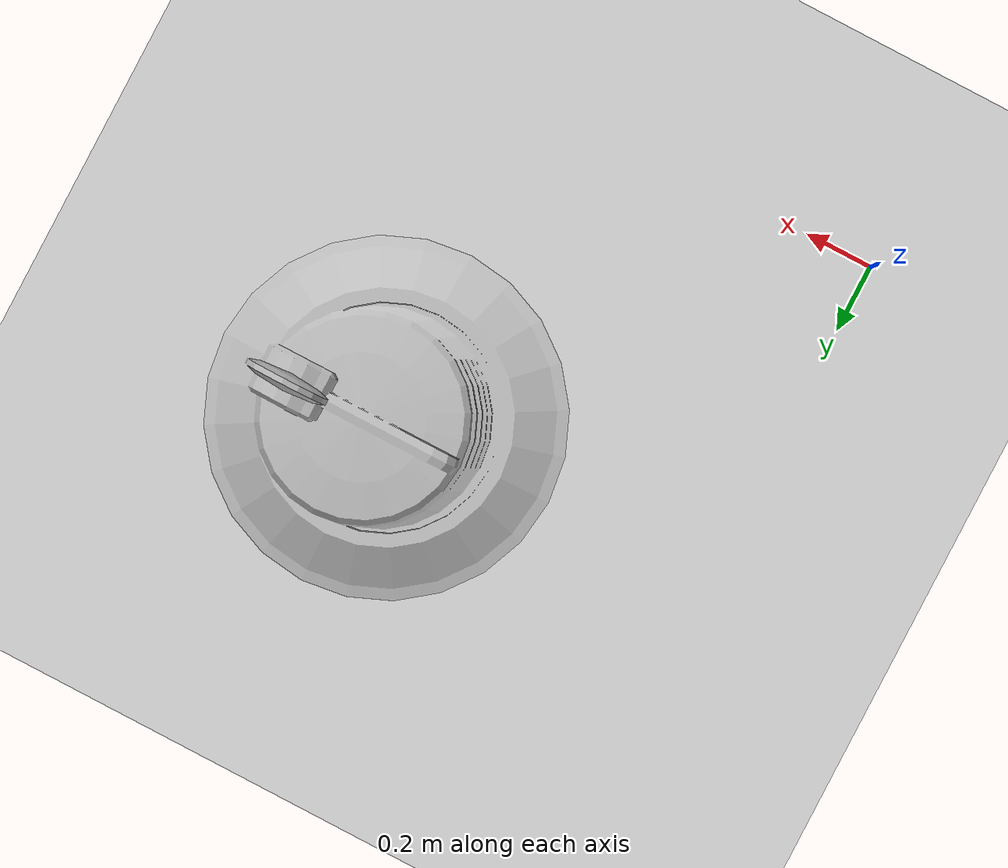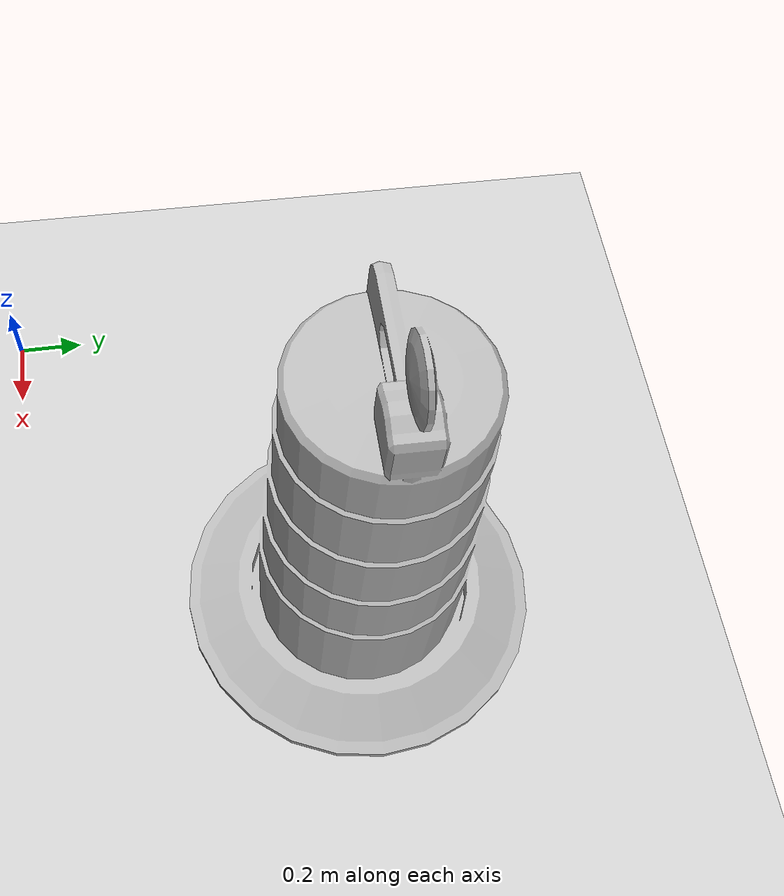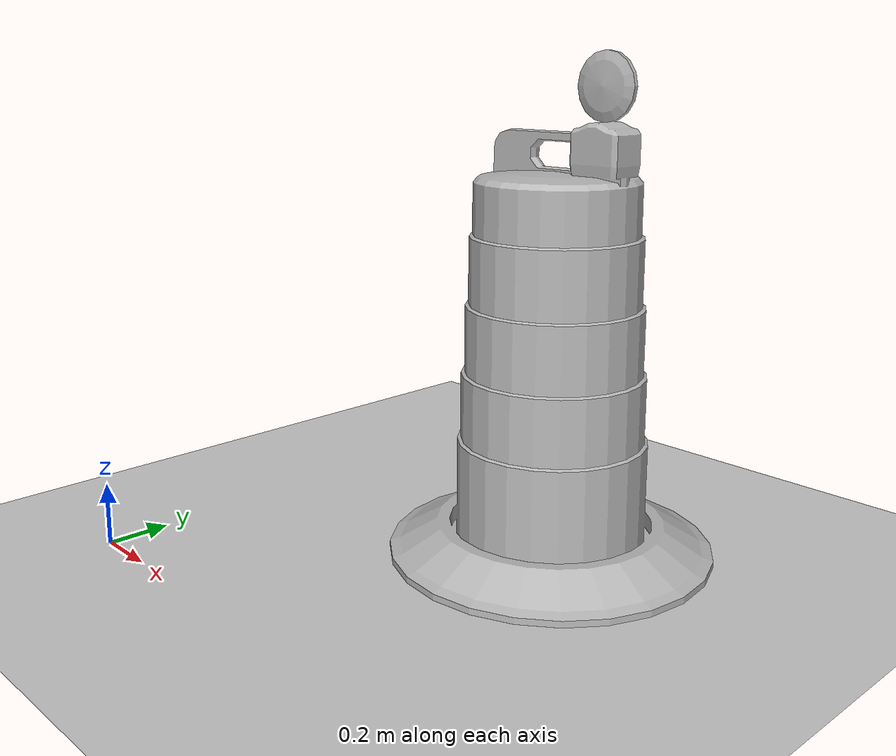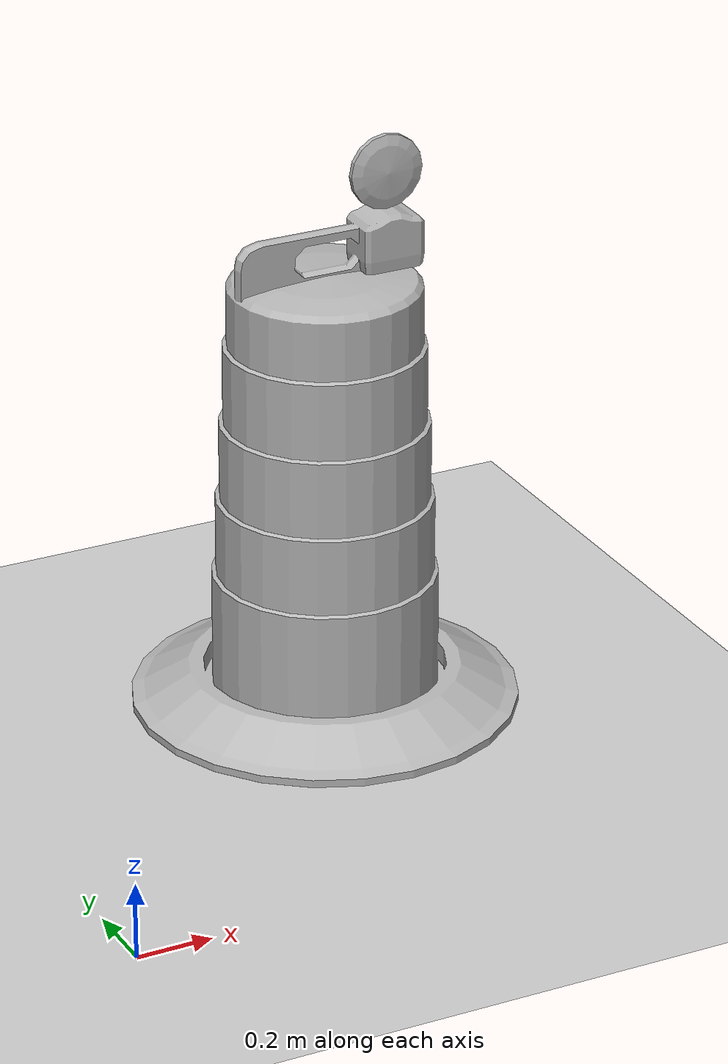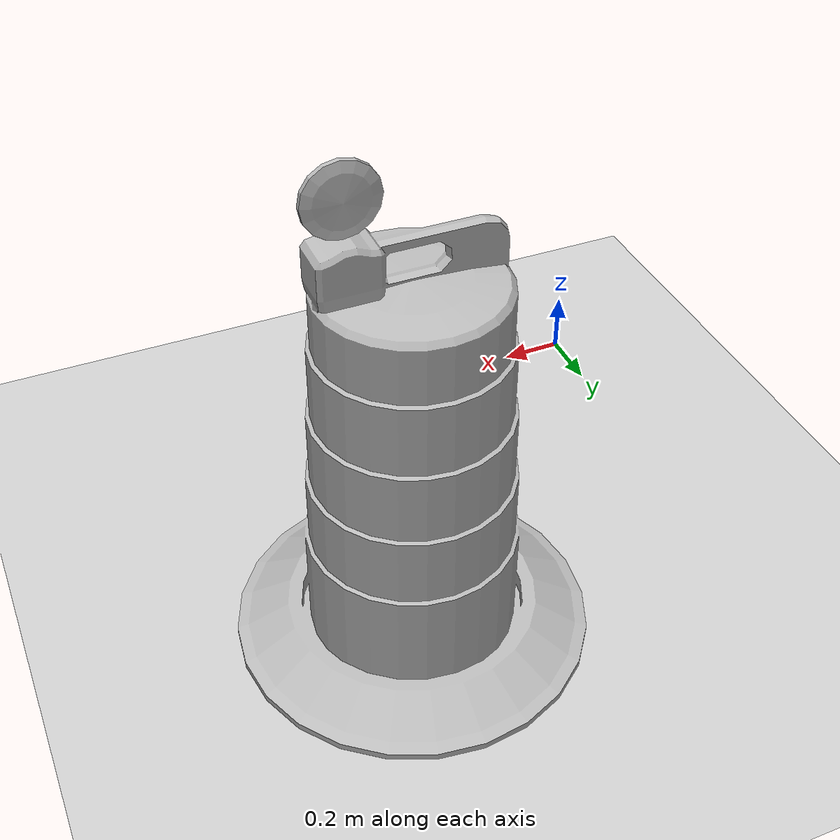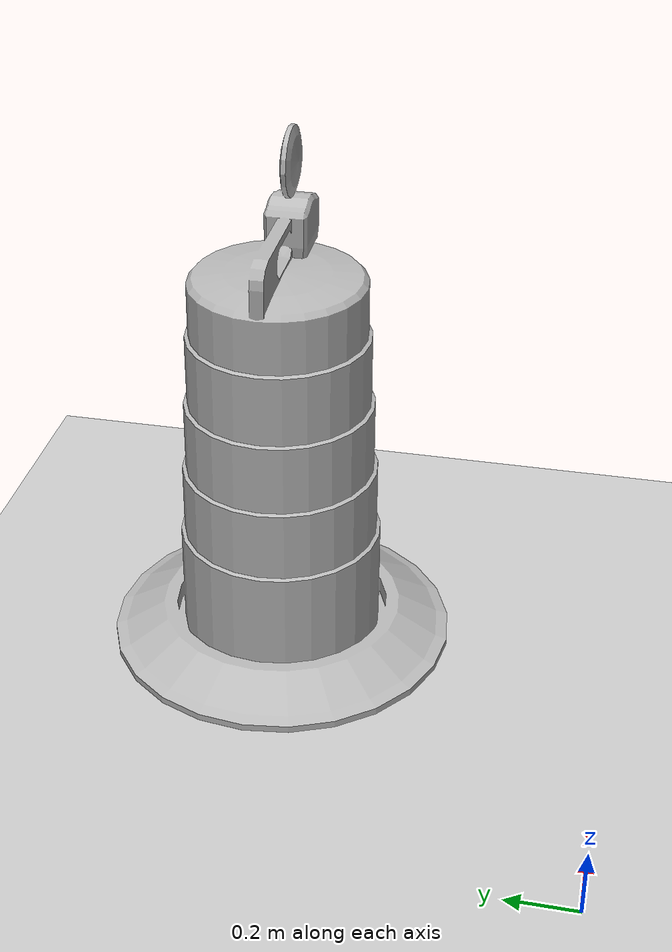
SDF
<?xml version="1.0"?>
<sdf version="1.4">
    <world name="default">
        <!-- Ground Plane -->
        <include>
            <uri>model://ground_plane</uri>
        </include>
        <!-- Sun -->
        <include>
            <uri>model://sun</uri>
        </include>
        <!-- Model -->
        <model name="a_barrier">
            <pose>1 1 0 0 0 0</pose>
            <static>false</static>
            <include>
                <uri>model://construction_barrel</uri>
            </include>
            <plugin name="a_model_plugin" filename="liba_model_plugin.so">
                <linear_vel>0.2</linear_vel>
                <iterations>15000</iterations>
                <side_iter>5000</side_iter>
            </plugin>
        </model>
    </world>
</sdf>

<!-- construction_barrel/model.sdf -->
<sdf version="1.5">
  <model name="Construction Barrel">
    <link name="link">
      <inertial>
        <pose>0 0 0.4 0 0 0</pose>
        <mass>500</mass>
        <inertia>
          <ixx>51.2096</ixx>
          <iyy>51.2096</iyy>
          <izz>25</izz>
          <ixy>0</ixy>
          <ixz>0</ixz>
        </inertia>
      </inertial>
      <collision name="collision">
        <geometry>
          <mesh>
            <uri>model://construction_barrel/meshes/construction_barrel.dae</uri>
          </mesh>
        </geometry>
      </collision>
      <visual name="visual">
        <geometry>
          <mesh>
            <uri>model://construction_barrel/meshes/construction_barrel.dae</uri>
          </mesh>
        </geometry>
      </visual>
    </link>
  </model>
</sdf>
